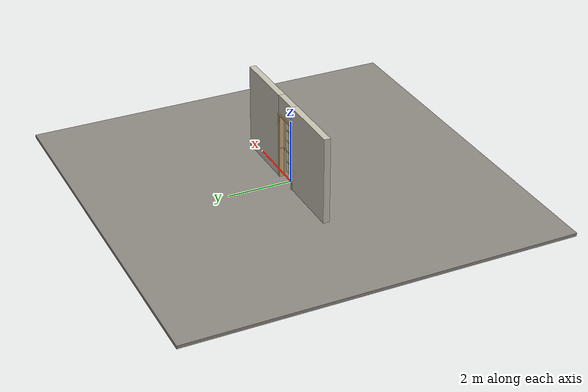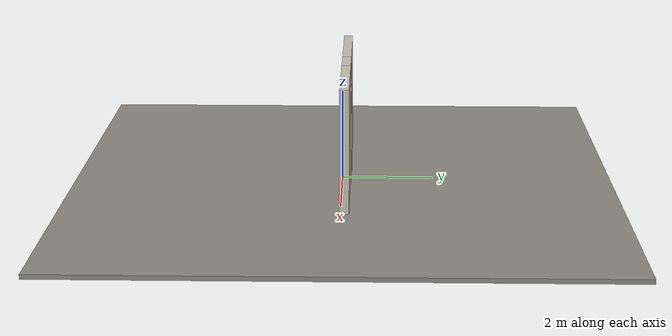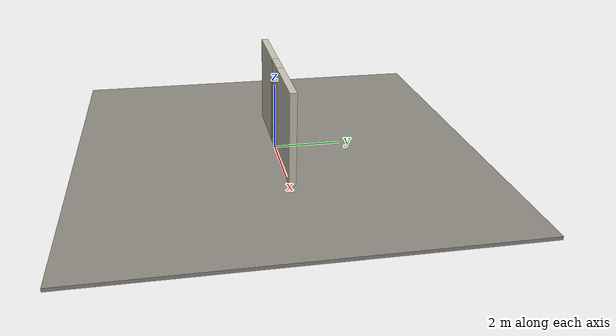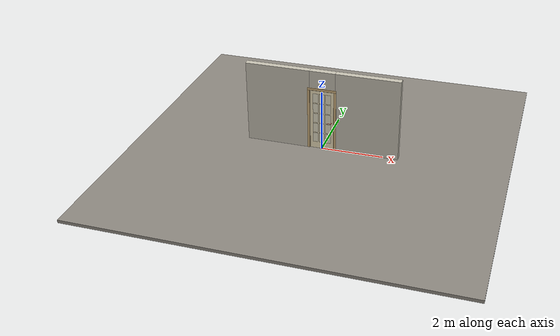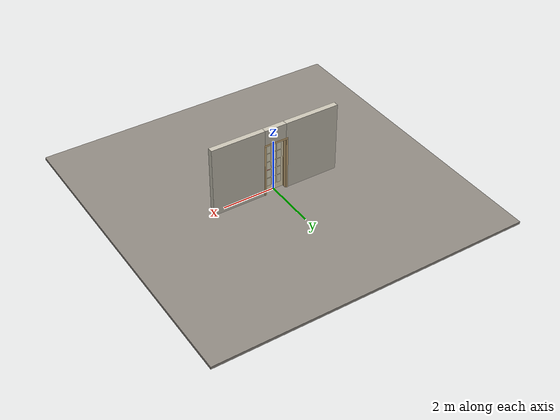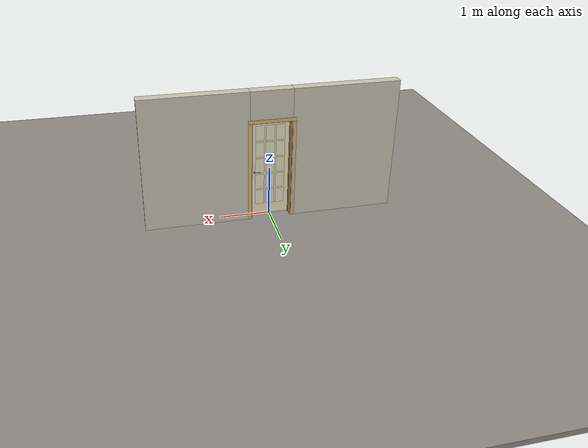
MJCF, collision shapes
<?xml version="1.0" ?>
<mujoco model="db0282_swing_single_full">
  <compiler angle="radian" meshdir="../../hardware" texturedir="../../textures" autolimits="true" inertiafromgeom="false"/>
  <option timestep="0.002" integrator="implicitfast" cone="elliptic" impratio="10" noslip_iterations="3">
    <flag multiccd="enable"/>
  </option>
  <size memory="16M"/>
  <default>
    <geom condim="4" solref="0.005 1" solimp="0.95 0.99 0.001"/>
    <joint solreflimit="0.005 1" solimplimit="0.95 0.99 0.001"/>
    <tendon solreflimit="0.005 1"/>
    <equality solref="0.002 1"/>
  </default>
  <visual>
    <headlight ambient="0.4 0.4 0.4" diffuse="0.7 0.7 0.7" specular="0.2 0.2 0.2"/>
    <quality shadowsize="4096"/>
    <map znear="0.01" zfar="60"/>
  </visual>
  <asset>
    <mesh name="hinge_96510cf394" file="hinge_96510cf394.obj"/>
    <mesh name="hinge_jamb_7fd4ca52b2" file="hinge_jamb_7fd4ca52b2.obj"/>
    <mesh name="lever_57205841c3" file="lever_57205841c3.obj"/>
    <material name="mat_floor" rgba="0.55 0.53 0.5 1" specular="0.2" shininess="0.15" reflectance="0"/>
    <material name="mat_wall" rgba="0.78 0.76 0.7 1" specular="0.2" shininess="0.1" reflectance="0"/>
    <material name="mat_leaf" rgba="0.93 0.88 0.74 1" specular="0.2" shininess="0.55" reflectance="0"/>
    <material name="mat_glass" rgba="0.85 0.92 0.95 0.25" specular="0.2" shininess="0.95" reflectance="0.1"/>
    <material name="mat_hinge" rgba="0.65 0.66 0.68 1" specular="0.74" shininess="0.5" reflectance="0.36"/>
    <material name="mat_op_black_matte_metal" rgba="0.05 0.05 0.05 1" specular="0.38" shininess="0.3" reflectance="0.12"/>
    <material name="mat_trim" rgba="0.85 0.66 0.3 1" specular="0.8" shininess="0.75" reflectance="0.4"/>
    <material name="mat_bolt" rgba="0.85 0.66 0.3 1" specular="0.8" shininess="0.75" reflectance="0.4"/>
    <material name="mat_frame" rgba="0.82 0.7 0.5 1" specular="0.2" shininess="0.45" reflectance="0"/>
    <texture name="skybox" type="skybox" builtin="gradient" rgb1="0.6 0.7 0.85" rgb2="0.9 0.92 0.95" width="256" height="256"/>
  </asset>
  <worldbody>
    <light name="sun" pos="1.5 -2.5 4" dir="-0.3 0.5 -0.8" directional="true" diffuse="0.8 0.8 0.8" specular="0.3 0.3 0.3" castshadow="true"/>
    <light name="fill" pos="-1.5 2.5 3" dir="0.3 -0.5 -0.7" directional="true" diffuse="0.35 0.35 0.4" castshadow="false"/>
    <camera name="robot_view" pos="0 -2.466687 1.734312" xyaxes="1 0 0 0 0.26963 0.962964" fovy="52"/>
    <camera name="far_view" pos="0 2.617687 1.734312" xyaxes="-1 0 0 0 -0.26963 0.962964" fovy="52"/>
    <camera name="iso" pos="1.932062 -2.059938 2.141063" xyaxes="0.741536 0.670913 0 -0.242917 0.268487 0.932151" fovy="46"/>
    <camera name="detail_handle" pos="0.4045 -0.8725 1.245" xyaxes="0.97561 0.219512 0 -0.070934 0.315262 0.94635" fovy="38"/>
    <geom name="floor" type="box" size="6 6 0.05" pos="0 0 -0.05" material="mat_floor" group="0" contype="1" conaffinity="1" friction="0.8 0.005 0.0001" density="2400"/>
    <geom name="wall_left" type="box" size="1.04825 0.1 1.35" pos="-1.45175 0.0755 1.35" material="mat_wall" group="0" contype="1" conaffinity="1" friction="0.6 0.005 0.0001" density="800"/>
    <geom name="wall_right" type="box" size="1.03325 0.1 1.35" pos="1.46675 0.0755 1.35" material="mat_wall" group="0" contype="1" conaffinity="1" friction="0.6 0.005 0.0001" density="800"/>
    <geom name="wall_header" type="box" size="0.4185 0.1 0.303" pos="0.015 0.0755 2.397" material="mat_wall" group="0" contype="1" conaffinity="1" friction="0.6 0.005 0.0001" density="800"/>
    <geom name="hinge_0_jamb" type="mesh" mesh="hinge_jamb_7fd4ca52b2" pos="-0.3815 -0.0245 0.259" material="mat_hinge" group="1" contype="0" conaffinity="0" density="7850"/>
    <geom name="hinge_1_jamb" type="mesh" mesh="hinge_jamb_7fd4ca52b2" pos="-0.3815 -0.0245 1.861" material="mat_hinge" group="1" contype="0" conaffinity="0" density="7850"/>
    <geom name="jamb_hinge" type="box" size="0.0095 0.1 1.0225" pos="-0.394 0.0755 1.0225" material="mat_frame" group="0" contype="1" conaffinity="1" friction="0.6 0.005 0.0001" density="400"/>
    <geom name="strike_965_wall_n" type="box" size="0.0245 0.083825 0.0167" pos="0.409 0.091675 0.965" material="mat_frame" group="0" contype="1" conaffinity="1" friction="0.6 0.005 0.0001" density="400"/>
    <geom name="strike_965_wall_p" type="box" size="0.0245 0.008 0.0167" pos="0.409 -0.01585 0.965" material="mat_frame" group="0" contype="1" conaffinity="1" friction="0.6 0.005 0.0001" density="400"/>
    <geom name="strike_965_ramp" type="box" size="0.0245 0.01649 0.0167" pos="0.413636 -0.028673 0.965" quat="0.977148 0 0 0.212558" material="mat_frame" group="0" contype="1" conaffinity="1" friction="0.12 0.005 0.0001" density="400"/>
    <geom name="strike_965_back" type="box" size="0.01615 0.00785 0.0167" pos="0.41735 0 0.965" material="mat_frame" group="0" contype="1" conaffinity="1" friction="0.6 0.005 0.0001" density="400"/>
    <geom name="jamb_strike_0" type="box" size="0.0245 0.1 0.47415" pos="0.409 0.0755 0.47415" material="mat_frame" group="0" contype="1" conaffinity="1" friction="0.6 0.005 0.0001" density="400"/>
    <geom name="jamb_strike_1" type="box" size="0.0245 0.1 0.53165" pos="0.409 0.0755 1.51335" material="mat_frame" group="0" contype="1" conaffinity="1" friction="0.6 0.005 0.0001" density="400"/>
    <geom name="jamb_head" type="box" size="0.4185 0.1 0.0095" pos="0.015 0.0755 2.0545" material="mat_frame" group="0" contype="1" conaffinity="1" friction="0.6 0.005 0.0001" density="400"/>
    <geom name="head_stud" type="box" size="0.4185 0.1 0.015" pos="0.015 0.0755 2.079" material="mat_wall" group="0" contype="1" conaffinity="1" friction="0.6 0.005 0.0001" density="500"/>
    <geom name="stop_hinge" type="box" size="0.0055 0.016 1.0225" pos="-0.379 0.034 1.0225" material="mat_frame" group="0" contype="1" conaffinity="1" friction="0.6 0.005 0.0001" density="400"/>
    <geom name="stop_strike" type="box" size="0.0055 0.016 1.0225" pos="0.379 0.034 1.0225" material="mat_frame" group="0" contype="1" conaffinity="1" friction="0.6 0.005 0.0001" density="400"/>
    <geom name="stop_head" type="box" size="0.3845 0.016 0.0055" pos="0 0.034 2.0395" material="mat_frame" group="0" contype="1" conaffinity="1" friction="0.6 0.005 0.0001" density="400"/>
    <geom name="casing_l_n" type="box" size="0.035 0.008 1.032" pos="-0.4335 -0.0325 1.0225" material="mat_frame" group="2" contype="0" conaffinity="0" density="400"/>
    <geom name="casing_r_n" type="box" size="0.035 0.008 1.032" pos="0.4335 -0.0325 1.0225" material="mat_frame" group="2" contype="0" conaffinity="0" density="400"/>
    <geom name="casing_h_n" type="box" size="0.4685 0.008 0.035" pos="0 -0.0325 2.094" material="mat_frame" group="2" contype="0" conaffinity="0" density="400"/>
    <geom name="casing_l_p" type="box" size="0.035 0.008 1.032" pos="-0.4335 0.1835 1.0225" material="mat_frame" group="2" contype="0" conaffinity="0" density="400"/>
    <geom name="casing_r_p" type="box" size="0.035 0.008 1.032" pos="0.4335 0.1835 1.0225" material="mat_frame" group="2" contype="0" conaffinity="0" density="400"/>
    <geom name="casing_h_p" type="box" size="0.4685 0.008 0.035" pos="0 0.1835 2.094" material="mat_frame" group="2" contype="0" conaffinity="0" density="400"/>
    <site name="approach_point" pos="0 -1.5 0" quat="1 0 0 0" size="0.05" rgba="0.2 0.9 0.2 0.5" group="4"/>
    <site name="goal_point" pos="0 1.5 0" quat="1 0 0 0" size="0.05" rgba="0.2 0.9 0.2 0.5" group="4"/>
    <site name="door_plane_center" pos="0 0 1.0225" quat="1 0 0 0" size="0.02" rgba="0.2 0.9 0.2 0.5" group="4"/>
    <body name="leaf" pos="-0.3845 0 0">
      <inertial pos="0.368262 -0.000636 1.026683" mass="18.976645" quat="0.501589 0.499399 0.500626 -0.49838" diaginertia="0.997950513 6.755986988 7.749663301"/>
      <joint name="leaf_hinge" type="hinge" axis="0 0 -1" pos="0.003 -0.0245 0" limited="true" range="0 2.094395" damping="0.173726" frictionloss="0.619701" armature="0.02"/>
      <geom name="leaf_slab" type="box" size="0.381 0.0175 1.016" pos="0.384 0 1.025" material="mat_leaf" group="0" contype="1" conaffinity="1" friction="0.35 0.005 0.0001" density="1"/>
      <geom name="leaf_glass_0" type="box" size="0.087 0.0183 0.158688" pos="0.18 0 0.391208" material="mat_glass" group="1" contype="0" conaffinity="0" density="1"/>
      <geom name="leaf_glass_1" type="box" size="0.087 0.0183 0.158688" pos="0.384 0 0.391208" material="mat_glass" group="1" contype="0" conaffinity="0" density="1"/>
      <geom name="leaf_glass_2" type="box" size="0.087 0.0183 0.158688" pos="0.588 0 0.391208" material="mat_glass" group="1" contype="0" conaffinity="0" density="1"/>
      <geom name="leaf_glass_3" type="box" size="0.087 0.0183 0.158688" pos="0.18 0 0.738584" material="mat_glass" group="1" contype="0" conaffinity="0" density="1"/>
      <geom name="leaf_glass_4" type="box" size="0.087 0.0183 0.158688" pos="0.384 0 0.738584" material="mat_glass" group="1" contype="0" conaffinity="0" density="1"/>
      <geom name="leaf_glass_5" type="box" size="0.087 0.0183 0.158688" pos="0.588 0 0.738584" material="mat_glass" group="1" contype="0" conaffinity="0" density="1"/>
      <geom name="leaf_glass_6" type="box" size="0.087 0.0183 0.158688" pos="0.18 0 1.08596" material="mat_glass" group="1" contype="0" conaffinity="0" density="1"/>
      <geom name="leaf_glass_7" type="box" size="0.087 0.0183 0.158688" pos="0.384 0 1.08596" material="mat_glass" group="1" contype="0" conaffinity="0" density="1"/>
      <geom name="leaf_glass_8" type="box" size="0.087 0.0183 0.158688" pos="0.588 0 1.08596" material="mat_glass" group="1" contype="0" conaffinity="0" density="1"/>
      <geom name="leaf_glass_9" type="box" size="0.087 0.0183 0.158688" pos="0.18 0 1.433336" material="mat_glass" group="1" contype="0" conaffinity="0" density="1"/>
      <geom name="leaf_glass_10" type="box" size="0.087 0.0183 0.158688" pos="0.384 0 1.433336" material="mat_glass" group="1" contype="0" conaffinity="0" density="1"/>
      <geom name="leaf_glass_11" type="box" size="0.087 0.0183 0.158688" pos="0.588 0 1.433336" material="mat_glass" group="1" contype="0" conaffinity="0" density="1"/>
      <geom name="leaf_glass_12" type="box" size="0.087 0.0183 0.158688" pos="0.18 0 1.780712" material="mat_glass" group="1" contype="0" conaffinity="0" density="1"/>
      <geom name="leaf_glass_13" type="box" size="0.087 0.0183 0.158688" pos="0.384 0 1.780712" material="mat_glass" group="1" contype="0" conaffinity="0" density="1"/>
      <geom name="leaf_glass_14" type="box" size="0.087 0.0183 0.158688" pos="0.588 0 1.780712" material="mat_glass" group="1" contype="0" conaffinity="0" density="1"/>
      <geom name="hinge_0" type="mesh" mesh="hinge_96510cf394" pos="0.003 -0.0245 0.259" material="mat_hinge" group="1" contype="0" conaffinity="0" density="7850"/>
      <geom name="hinge_1" type="mesh" mesh="hinge_96510cf394" pos="0.003 -0.0245 1.861" material="mat_hinge" group="1" contype="0" conaffinity="0" density="7850"/>
      <geom name="leaf_latch_bolt_faceplate" type="box" size="0.0006 0.01235 0.0267" pos="0.7644 0 0.965" material="mat_bolt" group="1" contype="0" conaffinity="0" density="8500"/>
      <site name="leaf_edge_mid" pos="0.765 0 1.016" quat="1 0 0 0" size="0.02" rgba="0.2 0.9 0.2 0.5" group="4"/>
      <body name="leaf_handle" pos="0.705 0 0.965">
        <inertial pos="-0.018609 0 0" mass="0.798454" quat="0.707107 0 0 -0.707107" diaginertia="0.001003601 0.002236545 0.003135681"/>
        <joint name="leaf_handle_hinge" type="hinge" axis="0 -1 0" limited="true" range="0 0.87" damping="0.212416" frictionloss="0.042" stiffness="1" springref="-0.35" armature="0.01"/>
        <geom name="leaf_handle_spindle" type="cylinder" size="0.006 0.0255" pos="0 0 0" quat="0.707107 -0.707107 0 0" material="mat_op_black_matte_metal" group="1" contype="0" conaffinity="0" density="7850"/>
        <geom name="leaf_handle_lever_n" type="mesh" mesh="lever_57205841c3" pos="0 -0.0175 0" quat="0.707107 0.707107 0 0" material="mat_op_black_matte_metal" group="1" contype="0" conaffinity="0" density="3000"/>
        <geom name="leaf_handle_lever_col_n" type="capsule" size="0.007 0.053" pos="-0.06 -0.0725 0" quat="0.707107 0 -0.707107 0" material="mat_op_black_matte_metal" group="3" contype="1" conaffinity="1" rgba="0.8 0.3 0.3 0.25" friction="0.7 0.01 0.0001" density="3000"/>
        <geom name="leaf_handle_hub_col_n" type="cylinder" size="0.012 0.022" pos="0 -0.0475 0" quat="0.707107 -0.707107 0 0" material="mat_op_black_matte_metal" group="3" contype="1" conaffinity="1" rgba="0.8 0.3 0.3 0.25" friction="0.6 0.005 0.0001" density="3000"/>
        <geom name="leaf_handle_lever_p" type="mesh" mesh="lever_57205841c3" pos="0 0.0175 0" quat="-0.707107 0.707107 0 0" material="mat_op_black_matte_metal" group="1" contype="0" conaffinity="0" density="3000"/>
        <geom name="leaf_handle_lever_col_p" type="capsule" size="0.007 0.053" pos="-0.06 0.0725 0" quat="0.707107 0 -0.707107 0" material="mat_op_black_matte_metal" group="3" contype="1" conaffinity="1" rgba="0.8 0.3 0.3 0.25" friction="0.7 0.01 0.0001" density="3000"/>
        <geom name="leaf_handle_hub_col_p" type="cylinder" size="0.012 0.022" pos="0 0.0475 0" quat="0.707107 -0.707107 0 0" material="mat_op_black_matte_metal" group="3" contype="1" conaffinity="1" rgba="0.8 0.3 0.3 0.25" friction="0.6 0.005 0.0001" density="3000"/>
        <site name="leaf_handle_grip_n" pos="-0.096 -0.0725 0" quat="1 0 0 0" size="0.012" rgba="0.2 0.9 0.2 0.5" group="4"/>
        <site name="leaf_handle_grip_p" pos="-0.096 0.0725 0" quat="1 0 0 0" size="0.012" rgba="0.2 0.9 0.2 0.5" group="4"/>
      </body>
      <body name="leaf_latch_bolt" pos="0.765 0 0.965">
        <inertial pos="-0.00865 0 0" mass="0.041419" quat="0.92388 -0.382683 0 0" diaginertia="0.000000798 0.000005598 0.000005598"/>
        <joint name="leaf_latch_bolt_slide" type="slide" axis="-1 0 0" limited="true" range="0 0.0127" damping="2" frictionloss="0.3" stiffness="300" springref="-0.008333" armature="0.1"/>
        <geom name="leaf_latch_bolt_capsule" type="capsule" size="0.00635 0.015" pos="-0.00865 0 0" quat="0.707107 0 0.707107 0" material="mat_bolt" group="0" contype="1" conaffinity="1" friction="0.2 0.005 0.0001" density="8500"/>
      </body>
    </body>
  </worldbody>
  <tendon>
    <fixed name="leaf_latch_bolt_coupling" limited="true" range="0 10">
      <joint joint="leaf_latch_bolt_slide" coef="1"/>
      <joint joint="leaf_handle_hinge" coef="-0.015679"/>
    </fixed>
  </tendon>
  <sensor>
    <jointpos name="leaf_hinge_pos" joint="leaf_hinge"/>
    <jointvel name="leaf_hinge_vel" joint="leaf_hinge"/>
    <jointpos name="leaf_handle_hinge_pos" joint="leaf_handle_hinge"/>
    <jointvel name="leaf_handle_hinge_vel" joint="leaf_handle_hinge"/>
    <jointpos name="leaf_latch_bolt_slide_pos" joint="leaf_latch_bolt_slide"/>
    <jointvel name="leaf_latch_bolt_slide_vel" joint="leaf_latch_bolt_slide"/>
  </sensor>
</mujoco>
